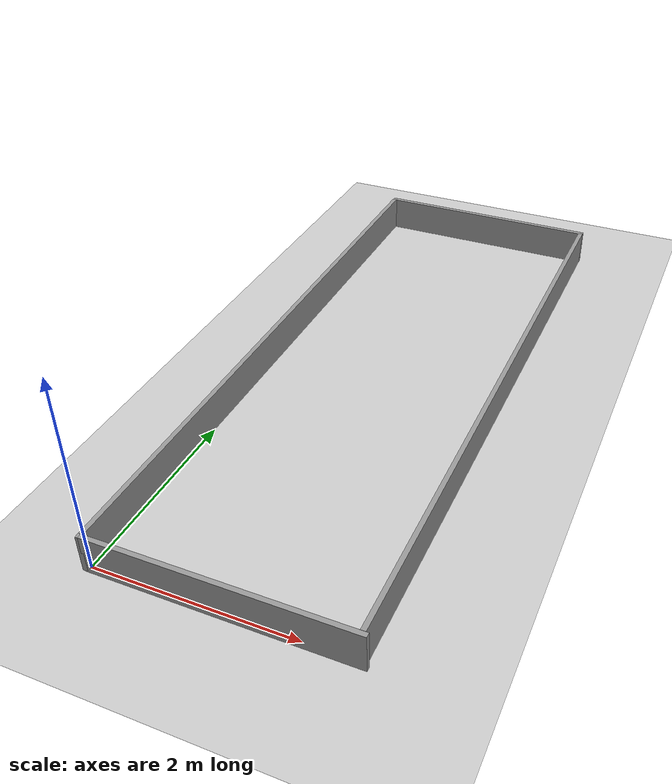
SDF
<sdf version="1.6">
 <world name="default">
  <scene><ambient>0.4 0.4 0.4 1</ambient><background>0.7 0.7 0.7 1</background><shadows>1</shadows></scene>
  <light name="sun" type="directional">
   <pose>0 0 10 0 -0 0</pose>
   <diffuse>0.8 0.8 0.8 1</diffuse>
   <specular>0.2 0.2 0.2 1</specular>
   <attenuation>
    <range>1000</range>
    <constant>0.9</constant>
    <linear>0.01</linear>
    <quadratic>0.001</quadratic>
   </attenuation>
   <direction>-0.5 0.1 -0.9</direction>
  </light>
  <model name="ground_plane">
   <static>1</static>
   <link name="link">
    <collision name="collision">
     <geometry><plane><normal>0 0 1</normal><size>100 100</size></plane></geometry>
     <surface>
      <contact><collide_bitmask>65535</collide_bitmask></contact>
      <friction><ode><mu>100</mu><mu2>50</mu2></ode></friction>
     </surface>
    </collision>
    <visual name="visual">
     <cast_shadows>0</cast_shadows>
     <geometry><plane><normal>0 0 1</normal><size>100 100</size></plane></geometry>
     <material>
      <script><uri>file://media/materials/scripts/gazebo.material</uri><name>Gazebo/Grey</name></script>
     </material>
    </visual>
   </link>
  </model>
  <physics name="default_physics" default="0" type="ode">
   <real_time_update_rate>1000</real_time_update_rate>
   <max_step_size>0.001</max_step_size>
   <real_time_factor>1</real_time_factor>
   <ode>
    <solver>
     <type>quick</type>
     <iters>150</iters>
     <precon_iters>0</precon_iters>
     <sor>1.4</sor>
     <use_dynamic_moi_rescaling>1</use_dynamic_moi_rescaling>
    </solver>
    <constraints>
     <cfm>1e-05</cfm>
     <erp>0.2</erp>
     <contact_max_correcting_vel>2000</contact_max_correcting_vel>
     <contact_surface_layer>0.01</contact_surface_layer>
    </constraints>
   </ode>
  </physics>
  <gravity>0 0 -9.8</gravity>
  <magnetic_field>6e-06 2.3e-05 -4.2e-05</magnetic_field>
  <atmosphere type="adiabatic"/>
  <audio><device>default</device></audio>
  <spherical_coordinates>
   <surface_model>EARTH_WGS84</surface_model>
   <latitude_deg>0</latitude_deg>
   <longitude_deg>0</longitude_deg>
   <elevation>0</elevation>
   <heading_deg>0</heading_deg>
  </spherical_coordinates>
  <model name="unit_box">
   <pose>-0.025002 -0.025004 0.195985 0 1e-06 -0.000327</pose>
   <link name="link">
    <inertial>
     <mass>1</mass>
     <inertia>
      <ixx>0.166667</ixx>
      <ixy>0</ixy>
      <ixz>0</ixz>
      <iyy>0.166667</iyy>
      <iyz>0</iyz>
      <izz>0.166667</izz>
     </inertia>
    </inertial>
    <collision name="collision">
     <geometry><box><size>0.0508695 0.049761 0.391969</size></box></geometry>
    </collision>
    <visual name="visual">
     <geometry><box><size>0.0508695 0.049761 0.391969</size></box></geometry>
     <material>
      <script><name>Gazebo/Grey</name><uri>file://media/materials/scripts/gazebo.material</uri></script>
     </material>
    </visual>
   </link>
  </model>
  <model name="unit_box_clone_3">
   <pose>2.525 6.825 0.195985 -0 -0 -0.00031</pose>
   <link name="link">
    <inertial>
     <mass>1</mass>
     <inertia>
      <ixx>0.166667</ixx>
      <ixy>0</ixy>
      <ixz>0</ixz>
      <iyy>0.166667</iyy>
      <iyz>0</iyz>
      <izz>0.166667</izz>
     </inertia>
    </inertial>
    <collision name="collision"><geometry><box><size>0.05087 0.049761 0.39197</size></box></geometry></collision>
    <visual name="visual">
     <geometry><box><size>0.05087 0.049761 0.39197</size></box></geometry>
     <material>
      <script><name>Gazebo/Grey</name><uri>file://media/materials/scripts/gazebo.material</uri></script>
     </material>
    </visual>
   </link>
  </model>
  <model name="short_wall">
   <link name="link">
    <inertial>
     <mass>1</mass>
     <inertia>
      <ixx>0.166667</ixx>
      <ixy>0</ixy>
      <ixz>0</ixz>
      <iyy>0.166667</iyy>
      <iyz>0</iyz>
      <izz>0.166667</izz>
     </inertia>
    </inertial>
    <visual name="visual">
     <geometry><box><size>2.6 0.049761 0.4</size></box></geometry>
     <material>
      <script><name>Gazebo/Grey</name><uri>file://media/materials/scripts/gazebo.material</uri></script>
      <shader type="vertex"><normal_map>__default__</normal_map></shader>
      <ambient>0.3 0.3 0.3 1</ambient>
      <diffuse>0.7 0.7 0.7 1</diffuse>
      <specular>0.01 0.01 0.01 1</specular>
      <emissive>0 0 0 1</emissive>
     </material>
     <pose>1.275 0.025 0 0 -0 0</pose>
    </visual>
    <collision name="collision">
     <geometry><box><size>5.05568 0.049761 0.39197</size></box></geometry>
     <surface>
      <friction>
       <ode><mu>1</mu><mu2>1</mu2><fdir1>0 0 0</fdir1><slip1>0</slip1><slip2>0</slip2></ode>
       <torsional>
        <coefficient>1</coefficient>
        <patch_radius>0</patch_radius>
        <surface_radius>0</surface_radius>
        <use_patch_radius>1</use_patch_radius>
        <ode><slip>0</slip></ode>
       </torsional>
      </friction>
      <bounce><restitution_coefficient>0</restitution_coefficient><threshold>1e+06</threshold></bounce>
      <contact>
       <collide_without_contact>0</collide_without_contact>
       <collide_without_contact_bitmask>1</collide_without_contact_bitmask>
       <collide_bitmask>1</collide_bitmask>
       <ode>
        <soft_cfm>0</soft_cfm>
        <soft_erp>0.2</soft_erp>
        <kp>1e+13</kp>
        <kd>1</kd>
        <max_vel>0.01</max_vel>
        <min_depth>0</min_depth>
       </ode>
       <bullet>
        <split_impulse>1</split_impulse>
        <split_impulse_penetration_threshold>-0.01</split_impulse_penetration_threshold>
        <soft_cfm>0</soft_cfm>
        <soft_erp>0.2</soft_erp>
        <kp>1e+13</kp>
        <kd>1</kd>
       </bullet>
      </contact>
     </surface>
    </collision>
   </link>
   <static>0</static>
   <pose>-0.025 6.8 0.195011 0.000572 0.00039 -2e-06</pose>
  </model>
  <model name="short_wall_clone">
   <link name="link">
    <inertial>
     <mass>1</mass>
     <inertia>
      <ixx>0.166667</ixx>
      <ixy>0</ixy>
      <ixz>0</ixz>
      <iyy>0.166667</iyy>
      <iyz>0</iyz>
      <izz>0.166667</izz>
     </inertia>
    </inertial>
    <visual name="visual">
     <geometry><box><size>2.6 0.049761 0.4</size></box></geometry>
     <material>
      <script><name>Gazebo/Grey</name><uri>file://media/materials/scripts/gazebo.material</uri></script>
      <shader type="vertex"><normal_map>__default__</normal_map></shader>
      <ambient>0.3 0.3 0.3 1</ambient>
      <diffuse>0.7 0.7 0.7 1</diffuse>
      <specular>0.01 0.01 0.01 1</specular>
      <emissive>0 0 0 1</emissive>
     </material>
     <pose>1.275 0.025 0 0 -0 0</pose>
    </visual>
    <collision name="collision">
     <geometry><box><size>5.05568 0.049761 0.39197</size></box></geometry>
     <surface>
      <friction>
       <ode><mu>1</mu><mu2>1</mu2><fdir1>0 0 0</fdir1><slip1>0</slip1><slip2>0</slip2></ode>
       <torsional>
        <coefficient>1</coefficient>
        <patch_radius>0</patch_radius>
        <surface_radius>0</surface_radius>
        <use_patch_radius>1</use_patch_radius>
        <ode><slip>0</slip></ode>
       </torsional>
      </friction>
      <bounce><restitution_coefficient>0</restitution_coefficient><threshold>1e+06</threshold></bounce>
      <contact>
       <collide_without_contact>0</collide_without_contact>
       <collide_without_contact_bitmask>1</collide_without_contact_bitmask>
       <collide_bitmask>1</collide_bitmask>
       <ode>
        <soft_cfm>0</soft_cfm>
        <soft_erp>0.2</soft_erp>
        <kp>1e+13</kp>
        <kd>1</kd>
        <max_vel>0.01</max_vel>
        <min_depth>0</min_depth>
       </ode>
       <bullet>
        <split_impulse>1</split_impulse>
        <split_impulse_penetration_threshold>-0.01</split_impulse_penetration_threshold>
        <soft_cfm>0</soft_cfm>
        <soft_erp>0.2</soft_erp>
        <kp>1e+13</kp>
        <kd>1</kd>
       </bullet>
      </contact>
     </surface>
    </collision>
   </link>
   <static>0</static>
   <pose>0 -0.05 0.195024 0.000572 0.00039 -2e-06</pose>
  </model>
  <model name="long_wall">
   <link name="link">
    <inertial>
     <mass>1</mass>
     <inertia>
      <ixx>0.166667</ixx>
      <ixy>0</ixy>
      <ixz>0</ixz>
      <iyy>0.166667</iyy>
      <iyz>0</iyz>
      <izz>0.166667</izz>
     </inertia>
    </inertial>
    <visual name="visual">
     <geometry><box><size>0.05 6.8 0.4</size></box></geometry>
     <material>
      <script><name>Gazebo/Grey</name><uri>file://media/materials/scripts/gazebo.material</uri></script>
      <shader type="vertex"><normal_map>__default__</normal_map></shader>
      <ambient>0.3 0.3 0.3 1</ambient>
      <diffuse>0.7 0.7 0.7 1</diffuse>
      <specular>0.01 0.01 0.01 1</specular>
      <emissive>0 0 0 1</emissive>
     </material>
     <pose>-0.025 3.4 0 0 -0 0</pose>
    </visual>
    <collision name="collision">
     <geometry><box><size>5.05568 0.049761 0.39197</size></box></geometry>
     <surface>
      <friction>
       <ode><mu>1</mu><mu2>1</mu2><fdir1>0 0 0</fdir1><slip1>0</slip1><slip2>0</slip2></ode>
       <torsional>
        <coefficient>1</coefficient>
        <patch_radius>0</patch_radius>
        <surface_radius>0</surface_radius>
        <use_patch_radius>1</use_patch_radius>
        <ode><slip>0</slip></ode>
       </torsional>
      </friction>
      <bounce><restitution_coefficient>0</restitution_coefficient><threshold>1e+06</threshold></bounce>
      <contact>
       <collide_without_contact>0</collide_without_contact>
       <collide_without_contact_bitmask>1</collide_without_contact_bitmask>
       <collide_bitmask>1</collide_bitmask>
       <ode>
        <soft_cfm>0</soft_cfm>
        <soft_erp>0.2</soft_erp>
        <kp>1e+13</kp>
        <kd>1</kd>
        <max_vel>0.01</max_vel>
        <min_depth>0</min_depth>
       </ode>
       <bullet>
        <split_impulse>1</split_impulse>
        <split_impulse_penetration_threshold>-0.01</split_impulse_penetration_threshold>
        <soft_cfm>0</soft_cfm>
        <soft_erp>0.2</soft_erp>
        <kp>1e+13</kp>
        <kd>1</kd>
       </bullet>
      </contact>
     </surface>
    </collision>
   </link>
   <static>0</static>
   <pose>0 0 0.195024 0.000572 0.00039 -2e-06</pose>
  </model>
  <model name="long_wall_clone">
   <link name="link">
    <inertial>
     <mass>1</mass>
     <inertia>
      <ixx>0.166667</ixx>
      <ixy>0</ixy>
      <ixz>0</ixz>
      <iyy>0.166667</iyy>
      <iyz>0</iyz>
      <izz>0.166667</izz>
     </inertia>
    </inertial>
    <visual name="visual">
     <geometry><box><size>0.05 6.8 0.4</size></box></geometry>
     <material>
      <script><name>Gazebo/Grey</name><uri>file://media/materials/scripts/gazebo.material</uri></script>
      <shader type="vertex"><normal_map>__default__</normal_map></shader>
      <ambient>0.3 0.3 0.3 1</ambient>
      <diffuse>0.7 0.7 0.7 1</diffuse>
      <specular>0.01 0.01 0.01 1</specular>
      <emissive>0 0 0 1</emissive>
     </material>
     <pose>-0.025 3.4 0 0 -0 0</pose>
    </visual>
    <collision name="collision">
     <geometry><box><size>5.05568 0.049761 0.39197</size></box></geometry>
     <surface>
      <friction>
       <ode><mu>1</mu><mu2>1</mu2><fdir1>0 0 0</fdir1><slip1>0</slip1><slip2>0</slip2></ode>
       <torsional>
        <coefficient>1</coefficient>
        <patch_radius>0</patch_radius>
        <surface_radius>0</surface_radius>
        <use_patch_radius>1</use_patch_radius>
        <ode><slip>0</slip></ode>
       </torsional>
      </friction>
      <bounce><restitution_coefficient>0</restitution_coefficient><threshold>1e+06</threshold></bounce>
      <contact>
       <collide_without_contact>0</collide_without_contact>
       <collide_without_contact_bitmask>1</collide_without_contact_bitmask>
       <collide_bitmask>1</collide_bitmask>
       <ode>
        <soft_cfm>0</soft_cfm>
        <soft_erp>0.2</soft_erp>
        <kp>1e+13</kp>
        <kd>1</kd>
        <max_vel>0.01</max_vel>
        <min_depth>0</min_depth>
       </ode>
       <bullet>
        <split_impulse>1</split_impulse>
        <split_impulse_penetration_threshold>-0.01</split_impulse_penetration_threshold>
        <soft_cfm>0</soft_cfm>
        <soft_erp>0.2</soft_erp>
        <kp>1e+13</kp>
        <kd>1</kd>
       </bullet>
      </contact>
     </surface>
    </collision>
   </link>
   <static>0</static>
   <pose>2.55 0 0.195024 0.000572 0.00039 -2e-06</pose>
  </model>
 </world>
</sdf>
